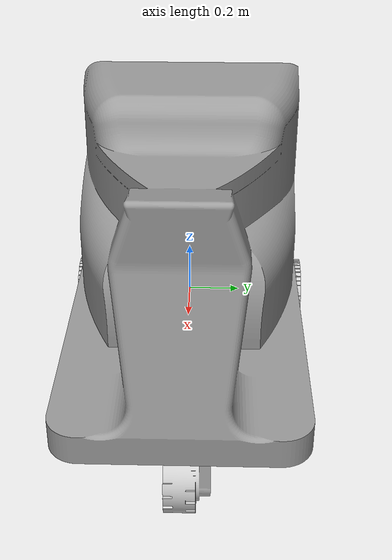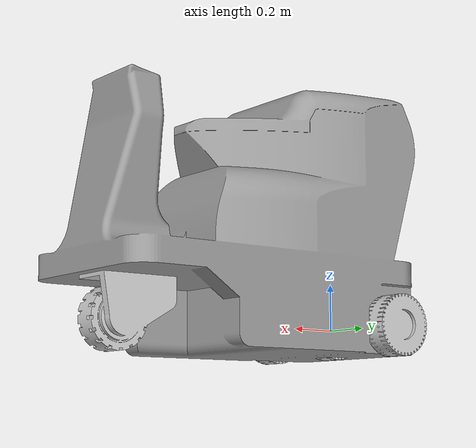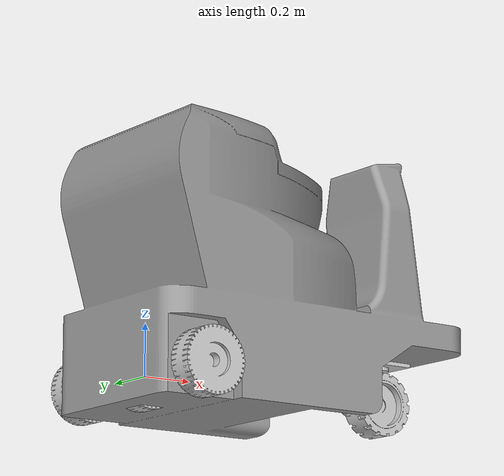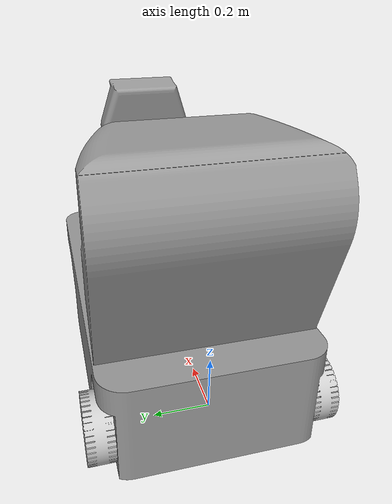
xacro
<?xml version="1.0"?>

<robot name="bicycle_bot" xmlns:xacro="http://wiki.ros.org/xacro">
  <!-- Include xacro for inertials, materials and wheels -->
  <xacro:include filename="$(find hakuroukun_description)/urdf/robot_part/wheel.xacro"/>

  <xacro:property name="robot_namespace" value="hakuroukun"/>

  <!-- Gazebo plugins -->
  <gazebo>
    <!-- Load ros_control plugin -->
    <plugin name="gazebo_ros_control" filename="libgazebo_ros_control.so">
      <robotNamespace>${robot_namespace}</robotNamespace>
      <robotSimType>gazebo_ros_control/DefaultRobotHWSim</robotSimType>
      <legacyModeNS>false</legacyModeNS>
    </plugin>

    <!-- Load gazebo_ros plugin. Publish passive (non-actuated) joints from Gazebo -->
    <plugin name="gazebo_ros_joint_state_publisher" filename="libgazebo_ros_joint_state_publisher.so">
        <robotNamespace>${robot_namespace}</robotNamespace>
        <jointName>
            front_wheel_joint
        </jointName>
        <updateRate>50</updateRate>
        <alwaysOn>true</alwaysOn>
    </plugin>
  </gazebo>

  <!-- Math constants -->
  <xacro:property name="deg_to_rad" value="0.01745329251994329577"/>

  <!-- Robot base dimensions -->
  <xacro:property name="base_length" value="1.35" />
  <xacro:property name="base_width" value="0.8" />
  <xacro:property name="base_height" value="1.1" />
  <xacro:property name="base_mass" value="30" />

  <!-- Wheel link dimensions -->
  <xacro:property name="wheel_radius" value="0.125" />
  <xacro:property name="wheel_thickness" value="0.1" />
  <xacro:property name="wheel_mass" value="2" />

  <!-- Steering link dimensions -->
  <xacro:property name="steer_radius" value="0.05" />
  <xacro:property name="steer_thickness" value="0.02" />
  <xacro:property name="steer_mass" value="0.1" />

  <!-- Axle positions -->
  <xacro:property name="axle_offset" value="0.05" />
  <xacro:property name="steer_offset" value="0.02" />

  <xacro:property name="b2f_axis_distance" value="1.1"/>
  <xacro:property name="b_axis_length" value="0.8"/>

  <!-- Base link -->
  <link name="base_link">
    <visual>
      <origin xyz="0 0 0" rpy="0 0 0"/>
      <geometry>
          <mesh filename="package://hakuroukun_description/meshes/hakuroukun_base_link.stl" scale="0.001 0.001 0.001" />
      </geometry>
      <material name="grey"/>
    </visual>
    <collision>
      <origin xyz="0 0 0" rpy="0 0 0"/>
      <geometry>
          <mesh filename="package://hakuroukun_description/meshes/hakuroukun_base_link.stl" scale="0.001 0.001 0.001" />
      </geometry>
    </collision>
    <xacro:solid_cuboid_inertial
        rpy="0 0 0" xyz="0 0 0"
        mass="${base_mass}"
        x="${base_length}" y="${base_width}" z="${base_height}" />
  </link>

  <!-- Front steer and rear wheel joints required for ackermann_steering_controller -->
  <xacro:front_steer
    name="front"
    parent="base"
    steer_radius="${steer_radius}"
    steer_thickness="${steer_thickness}"
    steer_mass="${steer_mass}"
    base_length="${base_length}"
    base_width="${base_width}"
    axle_offset="${axle_offset}"
    steer_height="${wheel_radius+steer_offset}">
  </xacro:front_steer>

  <xacro:front_wheel
    name="front"
    parent="front_steer"
    wheel_radius="${wheel_radius}"
    wheel_thickness="${wheel_thickness}"
    wheel_mass="${wheel_mass}">
    <origin xyz="0 0 ${-wheel_radius-steer_offset}" rpy="0 0 ${90 * deg_to_rad}"/>

  </xacro:front_wheel>

  <!-- REAR WHEEL-->
  <xacro:rear_wheel
    name="rear"
    parent="base"
    wheel_radius="${wheel_radius}"
    wheel_thickness="${wheel_thickness}"
    wheel_mass="${wheel_mass}">
    <origin xyz="0 0 0" rpy="0 0 0"/>
  </xacro:rear_wheel>

  <xacro:rear_wheel_lr
    name="rear_right"
    parent="base"
    wheel_radius="${wheel_radius}"
    wheel_thickness="${wheel_thickness}"
    wheel_mass="${wheel_mass}">
    <origin xyz="0 ${-b_axis_length/2} 0" rpy="0 0 0"/>
  </xacro:rear_wheel_lr>
  <xacro:rear_wheel_lr
    name="rear_left"
    parent="base"
    wheel_radius="${wheel_radius}"
    wheel_thickness="${wheel_thickness}"
    wheel_mass="${wheel_mass}">
    <origin xyz="0 ${b_axis_length/2} 0" rpy="0 0 0"/>
  </xacro:rear_wheel_lr>

  <!-- Colour -->
  <gazebo reference="base_link">
    <material>Gazebo/Green</material>
  </gazebo>

</robot>

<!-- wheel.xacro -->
<robot name="wheel" xmlns:xacro="http://wiki.ros.org/xacro">
  <!-- Include xacro for materials and inertials -->
  <xacro:include filename="$(find hakuroukun_description)/urdf/robot_part/materials.xacro"/>
  <xacro:include filename="$(find hakuroukun_description)/urdf/robot_part/inertials.xacro"/>

  <!-- Properties -->
  <xacro:property name="steer_effort" value="10.0"/>
  <xacro:property name="steer_velocity" value="5.0"/>
  <xacro:property name="steer_limit_deg" value="45.0"/>
  <xacro:property name="robot_namespace" value="hakuroukun"/>
  <xacro:property name="wheel_radius" value="0.125"/>
  <xacro:property name="b2f_axis_distance" value="1.1"/>
  <xacro:property name="b_axis_length" value="0.8"/>

  <!-- Bicycle model front steering link - FRONT REVOLUTE -->
  <xacro:macro name="front_steer"
    params="
      name
      parent
      steer_radius
      steer_thickness
      steer_mass
      base_length
      base_width
      axle_offset
      steer_height">
    <link name="${name}_steer_link">
      <visual>
        <origin xyz="0 0 0" rpy="0 0 0"/>
        <geometry>
          <cylinder radius="${steer_radius}" length="${steer_thickness}"/>
        </geometry>
        <material name="light_grey"/>
      </visual>
      <collision>
        <origin xyz="0 0 0" rpy="0 0 0"/>
        <geometry>
          <cylinder radius="${steer_radius}" length="${steer_thickness}"/>
        </geometry>
      </collision>
      <xacro:wheel_inertial
          rpy="0 0 0" xyz="0 0 0"
          mass="${steer_mass}"
          radius="${steer_radius}" length="${steer_thickness}" />
    </link>

    <joint name="${name}_steer_joint" type="revolute">
      <parent link="${parent}_link"/>
      <child link="${name}_steer_link"/>
      <origin xyz="${b2f_axis_distance} 0 ${steer_height}" rpy="0 0 0"/>
      <axis xyz="0 0 1"/>
      <limit effort="${steer_effort}"
             lower="${-180.0 * deg_to_rad}" upper="${180.0 * deg_to_rad}"
             velocity="${steer_velocity}"/>
    </joint>

    <transmission name="${name}_steer_joint_trans">
      <type>transmission_interface/SimpleTransmission</type>
      <actuator name="${name}_steer_joint_motor">
        <mechanicalReduction>1</mechanicalReduction>
        <hardwareInterface>hardware_interface/PositionJointInterface</hardwareInterface>
      </actuator>
      <joint name="${name}_steer_joint">
        <hardwareInterface>hardware_interface/PositionJointInterface</hardwareInterface>
      </joint>
    </transmission>

  </xacro:macro>

  <!-- Bicycle model front wheel link (passive - no transmission) -->
  <xacro:macro name="front_wheel"
    params="
      name
      parent
      wheel_radius
      wheel_thickness
      wheel_mass
      *origin">
    <link name="${name}_wheel_link">
      <visual>
        <origin xyz="0 0 0" rpy="0 0 0"/>
        <geometry>
          <mesh filename="package://hakuroukun_description/meshes/hakuroukun_front_wheel.stl" scale="0.001 0.001 0.001" />
        </geometry>
        <material name="light_grey"/>
      </visual>
      <collision>
        <origin xyz="0 0 0" rpy="0 0 0"/>
        <geometry>
          <mesh filename="package://hakuroukun_description/meshes/hakuroukun_front_wheel.stl" scale="0.001 0.001 0.001" />
        </geometry>
      </collision>
      <xacro:wheel_inertial
          rpy="0 0 0" xyz="0 0 0"
          mass="${wheel_mass}"
          radius="${wheel_radius}" length="${wheel_thickness}" />
    </link>

    <joint name="${name}_wheel_joint" type="continuous">
      <parent link="${parent}_link"/>
      <child link="${name}_wheel_link"/>
      <xacro:insert_block name="origin"/>
      <axis xyz="0 1 0"/>
    </joint>

    <gazebo reference="${name}_wheel_link">
      <material>Gazebo/Grey</material>
    </gazebo>

    <gazebo reference="${name}_wheel_joint">
      <provideFeedback>true</provideFeedback>
    </gazebo>
  </xacro:macro>

  <!-- Bicycle model rear wheel link (required for steer_drive_controller) -->
  <xacro:macro name="rear_wheel"
    params="
      name
      parent
      wheel_radius
      wheel_thickness
      wheel_mass
      *origin">
    <link name="${name}_wheel_link">
      <visual>
        <origin xyz="0 0 0" rpy="0 0 0"/>
        <geometry>
          <mesh filename="package://hakuroukun_description/meshes/hakuroukun_back_wheel.stl" scale="0.001 0.001 0.001" />
        </geometry>
        <material name="light_grey"/>
      </visual>
      <collision>
        <origin xyz="0 0 0" rpy="0 0 0"/>
        <geometry>
          <mesh filename="package://hakuroukun_description/meshes/hakuroukun_back_wheel.stl" scale="0.001 0.001 0.001" />
        </geometry>
      </collision>
      <xacro:wheel_inertial
          rpy="0 0 0" xyz="0 0 0"
          mass="${wheel_mass}"
          radius="${wheel_radius}" length="${wheel_thickness}" />
    </link>

    <joint name="${name}_wheel_joint" type="continuous">
      <parent link="${parent}_link"/>
      <child link="${name}_wheel_link"/>
      <xacro:insert_block name="origin"/>
      <axis xyz="0 1 0"/>
    </joint>

    <transmission name="${name}_wheel_joint_trans">
      <type>transmission_interface/SimpleTransmission</type>
      <actuator name="${name}_wheel_joint_motor">
        <mechanicalReduction>1</mechanicalReduction>
        <hardwareInterface>hardware_interface/VelocityJointInterface</hardwareInterface>
      </actuator>
      <joint name="${name}_wheel_joint">
        <hardwareInterface>hardware_interface/VelocityJointInterface</hardwareInterface>
      </joint>
    </transmission>

    <gazebo reference="${name}_wheel_link">
      <material>Gazebo/Grey</material>
    </gazebo>
  </xacro:macro>

<!-- REAR Left / Right -->
<xacro:macro name="rear_wheel_lr"
    params="
      name
      parent
      wheel_radius
      wheel_thickness
      wheel_mass
      *origin">
    <link name="${name}_wheel_link">
      <visual>
        <origin xyz="0 0 0" rpy="0 0 0"/>
        <geometry>
          <mesh filename="package://hakuroukun_description/meshes/hakuroukun_back_wheel.stl" scale="0.001 0.001 0.001" />
        </geometry>
        <material name="light_grey"/>
      </visual>
      <collision>
        <origin xyz="0 0 0" rpy="0 0 0"/>
        <geometry>
          <mesh filename="package://hakuroukun_description/meshes/hakuroukun_back_wheel.stl" scale="0.001 0.001 0.001" />
        </geometry>
      </collision>
      <xacro:wheel_inertial
          rpy="0 0 0" xyz="0 0 0"
          mass="${wheel_mass}"
          radius="${wheel_radius}" length="${wheel_thickness}" />
    </link>

    <joint name="${name}_wheel_joint" type="continuous">
      <parent link="${parent}_link"/>
      <child link="${name}_wheel_link"/>
      <xacro:insert_block name="origin"/>
      <axis xyz="0 1 0"/>
    </joint>

    <transmission name="${name}_wheel_joint_trans">
      <type>transmission_interface/SimpleTransmission</type>
      <actuator name="${name}_wheel_joint_motor">
        <mechanicalReduction>1</mechanicalReduction>
        <hardwareInterface>hardware_interface/VelocityJointInterface</hardwareInterface>
      </actuator>
      <joint name="${name}_wheel_joint">
        <hardwareInterface>hardware_interface/VelocityJointInterface</hardwareInterface>
      </joint>
    </transmission>

    <gazebo reference="${name}_wheel_link">
      <material>Gazebo/Grey</material>
    </gazebo>
  </xacro:macro>

</robot>

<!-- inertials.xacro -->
<!--  xacro macros for inertials.

    Define xacro macros for math constants and inertials:

    - solid cuboid
    - solid cylinder
    - null (a placeholder inertial for logical link elements)
 -->
<robot name="inertials" xmlns:xacro="http://wiki.ros.org/xacro">

    <!-- Math constants -->
    <xacro:property name="math_pi"        value="3.141592653589793" />
    <xacro:property name="math_pi_over_2" value="1.5707963267948966" />
    <xacro:property name="math_pi_over_4" value="0.785398163397448" />

    <!-- Inertial for solid cuboid with dimensions x y z  -->
    <xacro:macro name="solid_cuboid_inertial" params="rpy xyz mass x y z">
        <inertial>
            <origin rpy="${rpy}" xyz="${xyz}"/>
            <mass value="${mass}" />
            <inertia
                ixx="${mass * (y * y + z * z) / 12.0}" ixy="0.0" ixz="0.0"
                iyy="${mass * (x * x + z * z) / 12.0}" iyz="0.0"
                izz="${mass * (x * x + y * y) / 12.0}" />
        </inertial>
    </xacro:macro>

    <!-- Inertial for solid cylinder with radius and length aligned to z-axis  -->
    <xacro:macro name="wheel_inertial" params="rpy xyz mass radius length">
        <inertial>
            <origin rpy="${rpy}" xyz="${xyz}"/>
            <mass value="${mass}" />
            <inertia
                ixx="${mass * (3.0 * radius * radius + length * length) / 12.0}" ixy="0.0" ixz="0.0"
                iyy="${mass * (3.0 * radius * radius + length * length) / 12.0}" iyz="0.0"
                izz="${mass * (radius * radius) / 2.0}" />
        </inertial>
    </xacro:macro>

    <!-- A null inertial - used in placeholder links to esure the model will work in Gazebo -->
    <xacro:macro name="null_inertial">
        <inertial>
            <mass value="0.001"/>
            <inertia ixx="0.001" ixy="0" ixz="0" iyy="0.001" iyz="0" izz="0.001"/>
        </inertial>
    </xacro:macro>
</robot>
